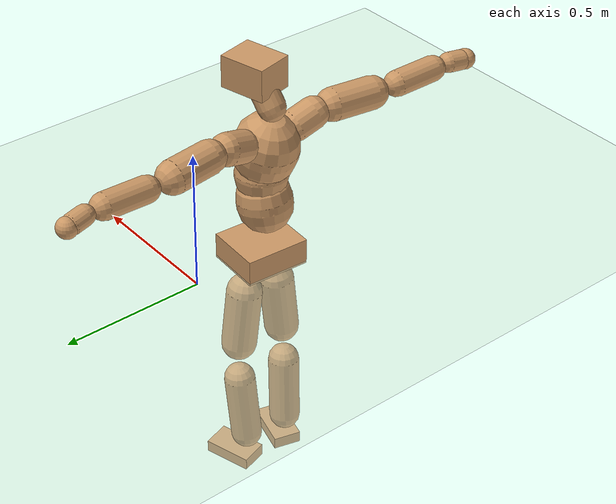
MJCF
<mujoco model="humanoid">
  <compiler coordinate="local" angle="radian"/>
  <default>
    <joint damping="0.0" armature="0.01" stiffness="0.0" limited="true"/>
    <geom conaffinity="1" condim="3" contype="7" margin="0.001" rgba="0.8 0.6 .4 1"/>
  </default>
  <asset>
    <texture type="skybox" builtin="gradient" rgb1=".4 .5 .6" rgb2="0 0 0" width="100" height="100"/>
    <texture builtin="flat" height="1278" mark="cross" markrgb="1 1 1" name="texgeom" random="0.01" rgb1="0.8 0.6 0.4" rgb2="0.8 0.6 0.4" type="cube" width="127"/>
    <texture builtin="checker" height="100" name="texplane" rgb1="0 0 0" rgb2="0.8 0.8 0.8" type="2d" width="100"/>
    <material name="MatPlane" reflectance="0.5" shininess="1" specular="1" texrepeat="60 60" texture="texplane"/>
    <material name="geom" texture="texgeom" texuniform="true"/>
  </asset>
  <worldbody>
    <light cutoff="100" diffuse="1 1 1" dir="-0 0 -1.3" directional="true" exponent="1" pos="0 0 1.3" specular=".1 .1 .1"/>
    <geom conaffinity="1" condim="3" name="floor" pos="0 0 0" rgba="0.8 0.9 0.8 1" size="100 100 .2" type="plane" material="MatPlane"/>
    <body name="Pelvis" pos="-0.001 -0.2582 0.0446">
      <freejoint name="Pelvis"/>
      <geom type="box" contype="1" conaffinity="1" density="500" pos="-0.0097 0.0006 -0.0072" size="0.1011 0.115 0.047" quat="0.9996 0.0000 0.0000 -0.0291" name="Pelvis"/>
      <body name="L_Hip" pos="-0.0066 0.0619 -0.0843">
        <joint name="L_Hip_x" type="hinge" pos="0 0 0" axis="1 0 0" stiffness="800" damping="80" armature="0.02" range="-180.0000 180.0000"/>
        <joint name="L_Hip_y" type="hinge" pos="0 0 0" axis="0 1 0" stiffness="800" damping="80" armature="0.02" range="-180.0000 180.0000"/>
        <joint name="L_Hip_z" type="hinge" pos="0 0 0" axis="0 0 1" stiffness="800" damping="80" armature="0.02" range="-180.0000 180.0000"/>
        <geom type="capsule" contype="1" conaffinity="1" density="500" fromto="0.0017 0.0075 -0.0728 0.0068 0.0299 -0.2912" size="0.0621" name="L_Hip"/>
        <body name="L_Knee" pos="0.0086 0.0373 -0.364">
          <joint name="L_Knee_x" type="hinge" pos="0 0 0" axis="1 0 0" stiffness="800" damping="80" armature="0.02" range="-180.0000 180.0000"/>
          <joint name="L_Knee_y" type="hinge" pos="0 0 0" axis="0 1 0" stiffness="800" damping="80" armature="0.02" range="-180.0000 180.0000"/>
          <joint name="L_Knee_z" type="hinge" pos="0 0 0" axis="0 0 1" stiffness="800" damping="80" armature="0.02" range="-180.0000 180.0000"/>
          <geom type="capsule" contype="1" conaffinity="1" density="500" fromto="-0.0079 -0.0032 -0.0826 -0.0317 -0.0128 -0.3304" size="0.0553" name="L_Knee"/>
          <body name="L_Ankle" pos="-0.0396 -0.016 -0.413">
            <joint name="L_Ankle_x" type="hinge" pos="0 0 0" axis="1 0 0" stiffness="800" damping="80" armature="0.02" range="-180.0000 180.0000"/>
            <joint name="L_Ankle_y" type="hinge" pos="0 0 0" axis="0 1 0" stiffness="800" damping="80" armature="0.02" range="-180.0000 180.0000"/>
            <joint name="L_Ankle_z" type="hinge" pos="0 0 0" axis="0 0 1" stiffness="800" damping="80" armature="0.02" range="-180.0000 180.0000"/>
            <geom type="box" contype="1" conaffinity="1" density="500" pos="0.0603 0.0181 -0.0290" size="0.0875 0.0499 0.023" quat="0.9894 0.0000 0.0000 0.1453" name="L_Ankle"/>
            <body name="L_Toe" pos="0.1207 0.0362 -0.058">
              <joint name="L_Toe_x" type="hinge" pos="0 0 0" axis="1 0 0" stiffness="500" damping="50" armature="0.02" range="-180.0000 180.0000"/>
              <joint name="L_Toe_y" type="hinge" pos="0 0 0" axis="0 1 0" stiffness="500" damping="50" armature="0.02" range="-180.0000 180.0000"/>
              <joint name="L_Toe_z" type="hinge" pos="0 0 0" axis="0 0 1" stiffness="500" damping="50" armature="0.02" range="-180.0000 180.0000"/>
              <geom type="box" contype="1" conaffinity="1" density="500" pos="0.0000 0.0000 0.0291" size="0.001 0.0024 0.0012" quat="0.9886 0.0000 0.0000 0.1505" name="L_Toe"/>
            </body>
          </body>
        </body>
      </body>
      <body name="R_Hip" pos="-0.0009 -0.063 -0.0937">
        <joint name="R_Hip_x" type="hinge" pos="0 0 0" axis="1 0 0" stiffness="800" damping="80" armature="0.02" range="-180.0000 180.0000"/>
        <joint name="R_Hip_y" type="hinge" pos="0 0 0" axis="0 1 0" stiffness="800" damping="80" armature="0.02" range="-180.0000 180.0000"/>
        <joint name="R_Hip_z" type="hinge" pos="0 0 0" axis="0 0 1" stiffness="800" damping="80" armature="0.02" range="-180.0000 180.0000"/>
        <geom type="capsule" contype="1" conaffinity="1" density="500" fromto="-0.0006 -0.0078 -0.0730 -0.0024 -0.0314 -0.2919" size="0.0618" name="R_Hip"/>
        <body name="R_Knee" pos="-0.003 -0.0392 -0.3649">
          <joint name="R_Knee_x" type="hinge" pos="0 0 0" axis="1 0 0" stiffness="800" damping="80" armature="0.02" range="-180.0000 180.0000"/>
          <joint name="R_Knee_y" type="hinge" pos="0 0 0" axis="0 1 0" stiffness="800" damping="80" armature="0.02" range="-180.0000 180.0000"/>
          <joint name="R_Knee_z" type="hinge" pos="0 0 0" axis="0 0 1" stiffness="800" damping="80" armature="0.02" range="-180.0000 180.0000"/>
          <geom type="capsule" contype="1" conaffinity="1" density="500" fromto="-0.0073 0.0037 -0.0814 -0.0291 0.0150 -0.3255" size="0.0555" name="R_Knee"/>
          <body name="R_Ankle" pos="-0.0364 0.0187 -0.4069">
            <joint name="R_Ankle_x" type="hinge" pos="0 0 0" axis="1 0 0" stiffness="800" damping="80" armature="0.02" range="-180.0000 180.0000"/>
            <joint name="R_Ankle_y" type="hinge" pos="0 0 0" axis="0 1 0" stiffness="800" damping="80" armature="0.02" range="-180.0000 180.0000"/>
            <joint name="R_Ankle_z" type="hinge" pos="0 0 0" axis="0 0 1" stiffness="800" damping="80" armature="0.02" range="-180.0000 180.0000"/>
            <geom type="box" contype="1" conaffinity="1" density="500" pos="0.0636 -0.0169 -0.0298" size="0.0887 0.0505 0.0225" quat="0.9916 0.0000 0.0000 -0.1296" name="R_Ankle"/>
            <body name="R_Toe" pos="0.1273 -0.0339 -0.0597">
              <joint name="R_Toe_x" type="hinge" pos="0 0 0" axis="1 0 0" stiffness="500" damping="50" armature="0.02" range="-180.0000 180.0000"/>
              <joint name="R_Toe_y" type="hinge" pos="0 0 0" axis="0 1 0" stiffness="500" damping="50" armature="0.02" range="-180.0000 180.0000"/>
              <joint name="R_Toe_z" type="hinge" pos="0 0 0" axis="0 0 1" stiffness="500" damping="50" armature="0.02" range="-180.0000 180.0000"/>
              <geom type="box" contype="1" conaffinity="1" density="500" pos="0.0000 0.0000 0.0306" size="0.0011 0.0025 0.0012" quat="0.9927 0.0000 0.0000 -0.1205" name="R_Toe"/>
            </body>
          </body>
        </body>
      </body>
      <body name="Torso" pos="-0.051 0.0046 0.1346">
        <joint name="Torso_x" type="hinge" pos="0 0 0" axis="1 0 0" stiffness="1000" damping="100" armature="0.02" range="-180.0000 180.0000"/>
        <joint name="Torso_y" type="hinge" pos="0 0 0" axis="0 1 0" stiffness="1000" damping="100" armature="0.02" range="-180.0000 180.0000"/>
        <joint name="Torso_z" type="hinge" pos="0 0 0" axis="0 0 1" stiffness="1000" damping="100" armature="0.02" range="-180.0000 180.0000"/>
        <geom type="capsule" contype="1" conaffinity="1" density="500" fromto="0.0148 0.0033 0.0847 0.0099 0.0022 0.0564" size="0.0945" name="Torso"/>
        <body name="Spine" pos="0.0247 0.0056 0.1411">
          <joint name="Spine_x" type="hinge" pos="0 0 0" axis="1 0 0" stiffness="1000" damping="100" armature="0.02" range="-180.0000 180.0000"/>
          <joint name="Spine_y" type="hinge" pos="0 0 0" axis="0 1 0" stiffness="1000" damping="100" armature="0.02" range="-180.0000 180.0000"/>
          <joint name="Spine_z" type="hinge" pos="0 0 0" axis="0 0 1" stiffness="1000" damping="100" armature="0.02" range="-180.0000 180.0000"/>
          <geom type="capsule" contype="1" conaffinity="1" density="500" fromto="0.0022 -0.0018 0.0342 0.0015 -0.0012 0.0228" size="0.0905" name="Spine"/>
          <body name="Chest" pos="0.0036 -0.0029 0.057">
            <joint name="Chest_x" type="hinge" pos="0 0 0" axis="1 0 0" stiffness="1000" damping="100" armature="0.02" range="-180.0000 180.0000"/>
            <joint name="Chest_y" type="hinge" pos="0 0 0" axis="0 1 0" stiffness="1000" damping="100" armature="0.02" range="-180.0000 180.0000"/>
            <joint name="Chest_z" type="hinge" pos="0 0 0" axis="0 0 1" stiffness="1000" damping="100" armature="0.02" range="-180.0000 180.0000"/>
            <geom type="capsule" contype="1" conaffinity="1" density="500" fromto="-0.0217 -0.0048 0.0903 -0.0145 -0.0032 0.0602" size="0.1097" name="Chest"/>
            <body name="Neck" pos="-0.0501 -0.0116 0.2164">
              <joint name="Neck_x" type="hinge" pos="0 0 0" axis="1 0 0" stiffness="500" damping="50" armature="0.02" range="-180.0000 180.0000"/>
              <joint name="Neck_y" type="hinge" pos="0 0 0" axis="0 1 0" stiffness="500" damping="50" armature="0.02" range="-180.0000 180.0000"/>
              <joint name="Neck_z" type="hinge" pos="0 0 0" axis="0 0 1" stiffness="500" damping="50" armature="0.02" range="-180.0000 180.0000"/>
              <geom type="capsule" contype="1" conaffinity="1" density="500" fromto="0.0102 0.0021 0.0157 0.0406 0.0083 0.0627" size="0.0473" name="Neck"/>
              <body name="Head" pos="0.0508 0.0104 0.0783">
                <joint name="Head_x" type="hinge" pos="0 0 0" axis="1 0 0" stiffness="500" damping="50" armature="0.02" range="-180.0000 180.0000"/>
                <joint name="Head_y" type="hinge" pos="0 0 0" axis="0 1 0" stiffness="500" damping="50" armature="0.02" range="-180.0000 180.0000"/>
                <joint name="Head_z" type="hinge" pos="0 0 0" axis="0 0 1" stiffness="500" damping="50" armature="0.02" range="-180.0000 180.0000"/>
                <geom type="box" contype="1" conaffinity="1" density="500" pos="0.0264 0.0062 0.0402" size="0.0811 0.0651 0.0552" quat="0.9933 0.0000 0.0000 0.1152" name="Head"/>
              </body>
            </body>
            <body name="L_Thorax" pos="-0.0278 0.0729 0.118">
              <joint name="L_Thorax_x" type="hinge" pos="0 0 0" axis="1 0 0" stiffness="500" damping="50" armature="0.02" range="-180.0000 180.0000"/>
              <joint name="L_Thorax_y" type="hinge" pos="0 0 0" axis="0 1 0" stiffness="500" damping="50" armature="0.02" range="-180.0000 180.0000"/>
              <joint name="L_Thorax_z" type="hinge" pos="0 0 0" axis="0 0 1" stiffness="500" damping="50" armature="0.02" range="-180.0000 180.0000"/>
              <geom type="capsule" contype="1" conaffinity="1" density="500" fromto="-0.0046 0.0249 0.0082 -0.0186 0.0995 0.0327" size="0.0547" name="L_Thorax"/>
              <body name="L_Shoulder" pos="-0.0232 0.1244 0.0409">
                <joint name="L_Shoulder_x" type="hinge" pos="0 0 0" axis="1 0 0" stiffness="500" damping="50" armature="0.02" range="-720.0000 720.0000"/>
                <joint name="L_Shoulder_y" type="hinge" pos="0 0 0" axis="0 1 0" stiffness="500" damping="50" armature="0.02" range="-720.0000 720.0000"/>
                <joint name="L_Shoulder_z" type="hinge" pos="0 0 0" axis="0 0 1" stiffness="500" damping="50" armature="0.02" range="-720.0000 720.0000"/>
                <geom type="capsule" contype="1" conaffinity="1" density="500" fromto="-0.0049 0.0485 -0.0017 -0.0195 0.1940 -0.0070" size="0.0565" name="L_Shoulder"/>
                <body name="L_Elbow" pos="-0.0243 0.2425 -0.0087">
                  <joint name="L_Elbow_x" type="hinge" pos="0 0 0" axis="1 0 0" stiffness="500" damping="50" armature="0.02" range="-720.0000 720.0000"/>
                  <joint name="L_Elbow_y" type="hinge" pos="0 0 0" axis="0 1 0" stiffness="500" damping="50" armature="0.02" range="-720.0000 720.0000"/>
                  <joint name="L_Elbow_z" type="hinge" pos="0 0 0" axis="0 0 1" stiffness="500" damping="50" armature="0.02" range="-720.0000 720.0000"/>
                  <geom type="capsule" contype="1" conaffinity="1" density="500" fromto="-0.0016 0.0514 0.0025 -0.0064 0.2057 0.0098" size="0.0439" name="L_Elbow"/>
                  <body name="L_Wrist" pos="-0.0079 0.2571 0.0123">
                    <joint name="L_Wrist_x" type="hinge" pos="0 0 0" axis="1 0 0" stiffness="300" damping="30" armature="0.02" range="-180.0000 180.0000"/>
                    <joint name="L_Wrist_y" type="hinge" pos="0 0 0" axis="0 1 0" stiffness="300" damping="30" armature="0.02" range="-180.0000 180.0000"/>
                    <joint name="L_Wrist_z" type="hinge" pos="0 0 0" axis="0 0 1" stiffness="300" damping="30" armature="0.02" range="-180.0000 180.0000"/>
                    <geom type="capsule" contype="1" conaffinity="1" density="500" fromto="-0.0030 0.0168 -0.0020 -0.0118 0.0673 -0.0081" size="0.0339" name="L_Wrist"/>
                    <body name="L_Hand" pos="-0.0148 0.0842 -0.0101">
                      <joint name="L_Hand_x" type="hinge" pos="0 0 0" axis="1 0 0" stiffness="300" damping="30" armature="0.02" range="-180.0000 180.0000"/>
                      <joint name="L_Hand_y" type="hinge" pos="0 0 0" axis="0 1 0" stiffness="300" damping="30" armature="0.02" range="-180.0000 180.0000"/>
                      <joint name="L_Hand_z" type="hinge" pos="0 0 0" axis="0 0 1" stiffness="300" damping="30" armature="0.02" range="-180.0000 180.0000"/>
                      <geom type="sphere" contype="1" conaffinity="1" density="500" size="0.0347" pos="0.0000 0.0000 0.0000" name="L_Hand"/>
                    </body>
                  </body>
                </body>
              </body>
            </body>
            <body name="R_Thorax" pos="-0.0306 -0.0852 0.1168">
              <joint name="R_Thorax_x" type="hinge" pos="0 0 0" axis="1 0 0" stiffness="500" damping="50" armature="0.02" range="-180.0000 180.0000"/>
              <joint name="R_Thorax_y" type="hinge" pos="0 0 0" axis="0 1 0" stiffness="500" damping="50" armature="0.02" range="-180.0000 180.0000"/>
              <joint name="R_Thorax_z" type="hinge" pos="0 0 0" axis="0 0 1" stiffness="500" damping="50" armature="0.02" range="-180.0000 180.0000"/>
              <geom type="capsule" contype="1" conaffinity="1" density="500" fromto="-0.0024 -0.0231 0.0084 -0.0097 -0.0925 0.0334" size="0.0546" name="R_Thorax"/>
              <body name="R_Shoulder" pos="-0.0122 -0.1156 0.0418">
                <joint name="R_Shoulder_x" type="hinge" pos="0 0 0" axis="1 0 0" stiffness="500" damping="50" armature="0.02" range="-720.0000 720.0000"/>
                <joint name="R_Shoulder_y" type="hinge" pos="0 0 0" axis="0 1 0" stiffness="500" damping="50" armature="0.02" range="-720.0000 720.0000"/>
                <joint name="R_Shoulder_z" type="hinge" pos="0 0 0" axis="0 0 1" stiffness="500" damping="50" armature="0.02" range="-720.0000 720.0000"/>
                <geom type="capsule" contype="1" conaffinity="1" density="500" fromto="-0.0062 -0.0505 -0.0009 -0.0246 -0.2018 -0.0035" size="0.0571" name="R_Shoulder"/>
                <body name="R_Elbow" pos="-0.0308 -0.2523 -0.0043">
                  <joint name="R_Elbow_x" type="hinge" pos="0 0 0" axis="1 0 0" stiffness="500" damping="50" armature="0.02" range="-720.0000 720.0000"/>
                  <joint name="R_Elbow_y" type="hinge" pos="0 0 0" axis="0 1 0" stiffness="500" damping="50" armature="0.02" range="-720.0000 720.0000"/>
                  <joint name="R_Elbow_z" type="hinge" pos="0 0 0" axis="0 0 1" stiffness="500" damping="50" armature="0.02" range="-720.0000 720.0000"/>
                  <geom type="capsule" contype="1" conaffinity="1" density="500" fromto="-0.0015 -0.0520 0.0014 -0.0059 -0.2081 0.0057" size="0.0446" name="R_Elbow"/>
                  <body name="R_Wrist" pos="-0.0073 -0.2602 0.0071">
                    <joint name="R_Wrist_x" type="hinge" pos="0 0 0" axis="1 0 0" stiffness="300" damping="30" armature="0.02" range="-180.0000 180.0000"/>
                    <joint name="R_Wrist_y" type="hinge" pos="0 0 0" axis="0 1 0" stiffness="300" damping="30" armature="0.02" range="-180.0000 180.0000"/>
                    <joint name="R_Wrist_z" type="hinge" pos="0 0 0" axis="0 0 1" stiffness="300" damping="30" armature="0.02" range="-180.0000 180.0000"/>
                    <geom type="capsule" contype="1" conaffinity="1" density="500" fromto="-0.0019 -0.0176 -0.0017 -0.0077 -0.0705 -0.0068" size="0.0352" name="R_Wrist"/>
                    <body name="R_Hand" pos="-0.0096 -0.0882 -0.0085">
                      <joint name="R_Hand_x" type="hinge" pos="0 0 0" axis="1 0 0" stiffness="300" damping="30" armature="0.02" range="-180.0000 180.0000"/>
                      <joint name="R_Hand_y" type="hinge" pos="0 0 0" axis="0 1 0" stiffness="300" damping="30" armature="0.02" range="-180.0000 180.0000"/>
                      <joint name="R_Hand_z" type="hinge" pos="0 0 0" axis="0 0 1" stiffness="300" damping="30" armature="0.02" range="-180.0000 180.0000"/>
                      <geom type="sphere" contype="1" conaffinity="1" density="500" size="0.0360" pos="0.0000 0.0000 0.0000" name="R_Hand"/>
                    </body>
                  </body>
                </body>
              </body>
            </body>
          </body>
        </body>
      </body>
    </body>
  </worldbody>
  <actuator>
    <motor name="L_Hip_x" joint="L_Hip_x" gear="500"/>
    <motor name="L_Hip_y" joint="L_Hip_y" gear="500"/>
    <motor name="L_Hip_z" joint="L_Hip_z" gear="500"/>
    <motor name="L_Knee_x" joint="L_Knee_x" gear="500"/>
    <motor name="L_Knee_y" joint="L_Knee_y" gear="500"/>
    <motor name="L_Knee_z" joint="L_Knee_z" gear="500"/>
    <motor name="L_Ankle_x" joint="L_Ankle_x" gear="500"/>
    <motor name="L_Ankle_y" joint="L_Ankle_y" gear="500"/>
    <motor name="L_Ankle_z" joint="L_Ankle_z" gear="500"/>
    <motor name="L_Toe_x" joint="L_Toe_x" gear="500"/>
    <motor name="L_Toe_y" joint="L_Toe_y" gear="500"/>
    <motor name="L_Toe_z" joint="L_Toe_z" gear="500"/>
    <motor name="R_Hip_x" joint="R_Hip_x" gear="500"/>
    <motor name="R_Hip_y" joint="R_Hip_y" gear="500"/>
    <motor name="R_Hip_z" joint="R_Hip_z" gear="500"/>
    <motor name="R_Knee_x" joint="R_Knee_x" gear="500"/>
    <motor name="R_Knee_y" joint="R_Knee_y" gear="500"/>
    <motor name="R_Knee_z" joint="R_Knee_z" gear="500"/>
    <motor name="R_Ankle_x" joint="R_Ankle_x" gear="500"/>
    <motor name="R_Ankle_y" joint="R_Ankle_y" gear="500"/>
    <motor name="R_Ankle_z" joint="R_Ankle_z" gear="500"/>
    <motor name="R_Toe_x" joint="R_Toe_x" gear="500"/>
    <motor name="R_Toe_y" joint="R_Toe_y" gear="500"/>
    <motor name="R_Toe_z" joint="R_Toe_z" gear="500"/>
    <motor name="Torso_x" joint="Torso_x" gear="500"/>
    <motor name="Torso_y" joint="Torso_y" gear="500"/>
    <motor name="Torso_z" joint="Torso_z" gear="500"/>
    <motor name="Spine_x" joint="Spine_x" gear="500"/>
    <motor name="Spine_y" joint="Spine_y" gear="500"/>
    <motor name="Spine_z" joint="Spine_z" gear="500"/>
    <motor name="Chest_x" joint="Chest_x" gear="500"/>
    <motor name="Chest_y" joint="Chest_y" gear="500"/>
    <motor name="Chest_z" joint="Chest_z" gear="500"/>
    <motor name="Neck_x" joint="Neck_x" gear="500"/>
    <motor name="Neck_y" joint="Neck_y" gear="500"/>
    <motor name="Neck_z" joint="Neck_z" gear="500"/>
    <motor name="Head_x" joint="Head_x" gear="500"/>
    <motor name="Head_y" joint="Head_y" gear="500"/>
    <motor name="Head_z" joint="Head_z" gear="500"/>
    <motor name="L_Thorax_x" joint="L_Thorax_x" gear="500"/>
    <motor name="L_Thorax_y" joint="L_Thorax_y" gear="500"/>
    <motor name="L_Thorax_z" joint="L_Thorax_z" gear="500"/>
    <motor name="L_Shoulder_x" joint="L_Shoulder_x" gear="500"/>
    <motor name="L_Shoulder_y" joint="L_Shoulder_y" gear="500"/>
    <motor name="L_Shoulder_z" joint="L_Shoulder_z" gear="500"/>
    <motor name="L_Elbow_x" joint="L_Elbow_x" gear="500"/>
    <motor name="L_Elbow_y" joint="L_Elbow_y" gear="500"/>
    <motor name="L_Elbow_z" joint="L_Elbow_z" gear="500"/>
    <motor name="L_Wrist_x" joint="L_Wrist_x" gear="500"/>
    <motor name="L_Wrist_y" joint="L_Wrist_y" gear="500"/>
    <motor name="L_Wrist_z" joint="L_Wrist_z" gear="500"/>
    <motor name="L_Hand_x" joint="L_Hand_x" gear="500"/>
    <motor name="L_Hand_y" joint="L_Hand_y" gear="500"/>
    <motor name="L_Hand_z" joint="L_Hand_z" gear="500"/>
    <motor name="R_Thorax_x" joint="R_Thorax_x" gear="500"/>
    <motor name="R_Thorax_y" joint="R_Thorax_y" gear="500"/>
    <motor name="R_Thorax_z" joint="R_Thorax_z" gear="500"/>
    <motor name="R_Shoulder_x" joint="R_Shoulder_x" gear="500"/>
    <motor name="R_Shoulder_y" joint="R_Shoulder_y" gear="500"/>
    <motor name="R_Shoulder_z" joint="R_Shoulder_z" gear="500"/>
    <motor name="R_Elbow_x" joint="R_Elbow_x" gear="500"/>
    <motor name="R_Elbow_y" joint="R_Elbow_y" gear="500"/>
    <motor name="R_Elbow_z" joint="R_Elbow_z" gear="500"/>
    <motor name="R_Wrist_x" joint="R_Wrist_x" gear="500"/>
    <motor name="R_Wrist_y" joint="R_Wrist_y" gear="500"/>
    <motor name="R_Wrist_z" joint="R_Wrist_z" gear="500"/>
    <motor name="R_Hand_x" joint="R_Hand_x" gear="500"/>
    <motor name="R_Hand_y" joint="R_Hand_y" gear="500"/>
    <motor name="R_Hand_z" joint="R_Hand_z" gear="500"/>
  </actuator>
  <contact>
    <exclude body1="Torso" body2="Chest"/>
    <exclude body1="Head" body2="Chest"/>
    <exclude body1="R_Knee" body2="R_Toe"/>
    <exclude body1="R_Knee" body2="L_Ankle"/>
    <exclude body1="R_Knee" body2="L_Toe"/>
    <exclude body1="L_Knee" body2="L_Toe"/>
    <exclude body1="L_Knee" body2="R_Ankle"/>
    <exclude body1="L_Knee" body2="R_Toe"/>
    <exclude body1="L_Shoulder" body2="Chest"/>
    <exclude body1="R_Shoulder" body2="Chest"/>
  </contact>
  <sensor/>
  <size njmax="700" nconmax="700"/>
</mujoco>
